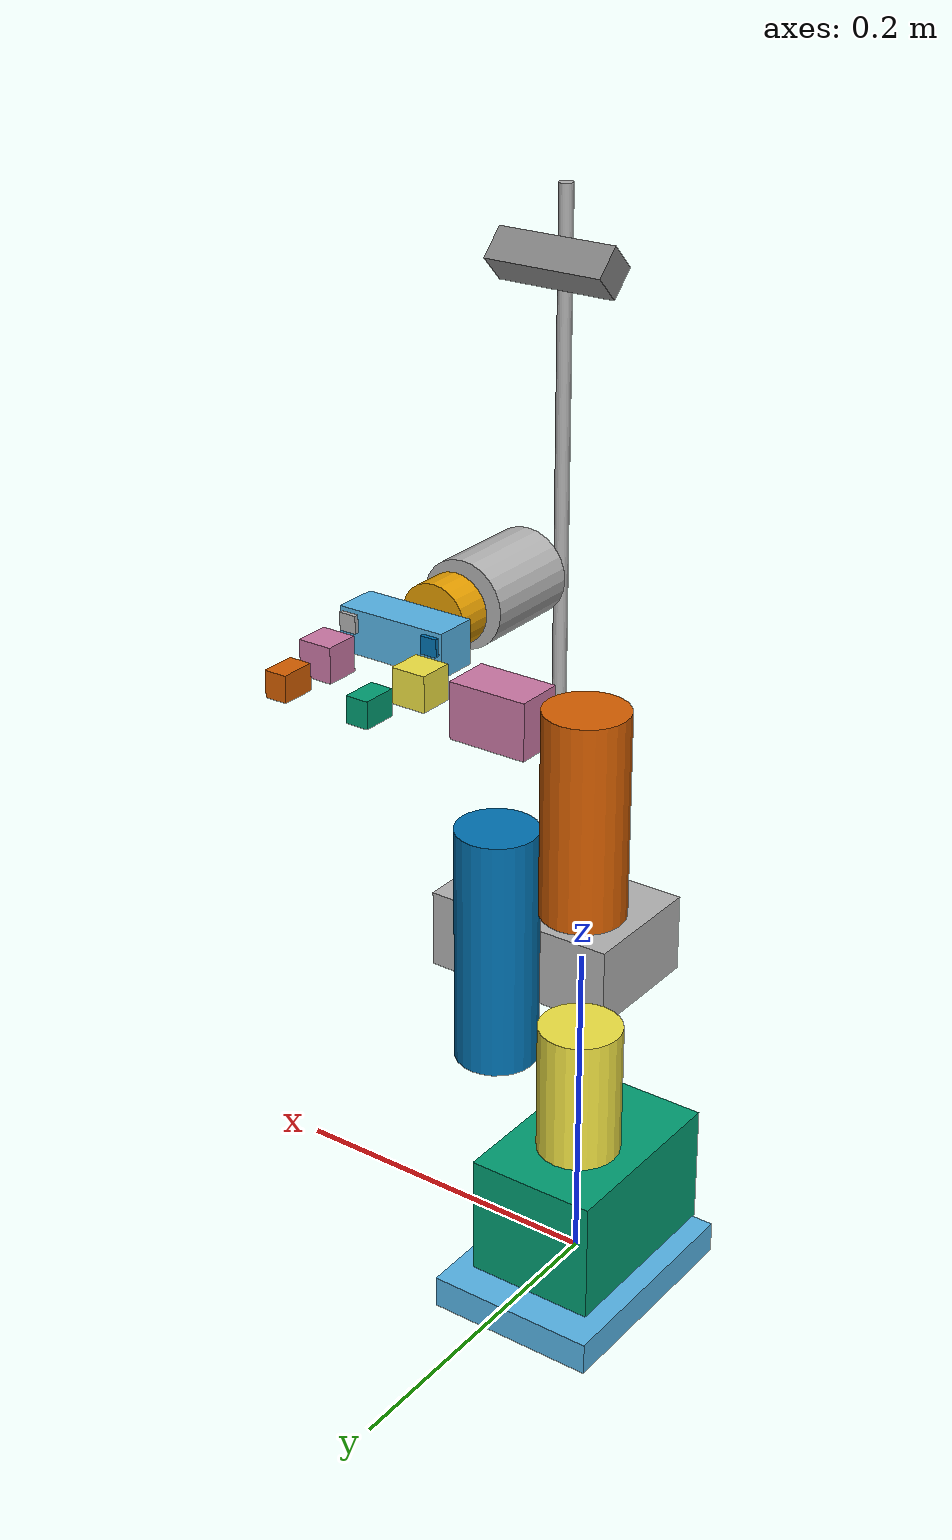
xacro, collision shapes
<?xml version="1.0"?>
<robot name="mycobot_280" xmlns:xacro="http://www.ros.org/wiki/xacro">
  <xacro:include filename="$(find mycobot_gazebo)/urdf/ros2_control/gazebo/mycobot_280.urdf.xacro"/>

  <xacro:property name="M_PI" value="3.1415926535897931" />

  <xacro:property name="d435_cam_width" value="0.090"/>
  <xacro:property name="d435_cam_height" value="0.025"/>
  <xacro:property name="d435_cam_depth" value="0.02505"/>

  <xacro:property name="d435_cam_depth_to_infra1_offset" value="0.0"/>
  <xacro:property name="d435_cam_depth_to_infra2_offset" value="-0.050"/>
  <xacro:property name="d435_cam_depth_to_color_offset" value="0.015"/>

  <xacro:property name="camera_tilt_angle_deg" value="45"/>

  <link name="torso_link">
    <inertial>
      <origin xyz="0 0 0.50" />
      <mass value="2.5" />
      <inertia ixx="0.8" ixy="0.0" ixz="0.0" iyy="0.8" iyz="0.0" izz="0.8" />
    </inertial>
    <visual name="holder">
      <origin xyz="0 0 0.25" rpy="0 0 0" />
      <material name="LightGrey">
        <color rgba="0.7 0.7 0.7 1.0"/>
      </material>
      <geometry>
        <cylinder radius="0.005" length="0.5"/>
      </geometry>
    </visual>
    <visual name="base">
      <origin xyz="0 0 0" rpy="0 0 0" />
      <material name="LightGrey">
        <color rgba="0.7 0.7 0.7 1.0"/>
      </material>
      <geometry>
        <box size="0.15 0.10 0.06" />
      </geometry>
    </visual>
    <collision name="holder">
      <origin xyz="0 0 0.25" rpy="0 0 0" />
      <geometry>
        <cylinder radius="0.005" length="0.6"/>
      </geometry>
    </collision>
    <collision name="base">
      <origin xyz="0 0 0.0" rpy="0 0 0" />
      <geometry>
        <box size="0.15 0.10 0.06" />
      </geometry>
    </collision>
  </link>

  <joint name="base_link_to_torso_link" type="fixed">
    <parent link="base_link"/>
    <child link="torso_link"/>
    <origin xyz="0.22 -0.30 0" rpy="0 0 0"/>
  </joint>

  <joint name="camera_head_joint" type="fixed">
    <parent link="torso_link"/>
    <child link="camera_head_link" />
    <origin xyz="0 0.01 0.50" rpy="0.0 ${camera_tilt_angle_deg * M_PI / 180} ${M_PI/2}"/>
  </joint>

  <link name="camera_head_link">
    <visual>
      <origin xyz="0 0 0" rpy="${M_PI/2} 0.0 ${M_PI/2}"/>
      <geometry>
        <mesh filename="file://$(find hello_mtc_with_perception)/urdf/meshes/d435.stl" />
      </geometry>
      <material name="aluminum">
        <color rgba="0.5 0.5 0.5 1"/>
      </material>
    </visual>
    <collision>
      <origin xyz="0 0 0" rpy="0 0 0"/>
      <geometry>
        <box size="${d435_cam_depth} ${d435_cam_width} ${d435_cam_height}"/>
      </geometry>
    </collision>
    <inertial>
      <mass value="0.072" />
      <origin xyz="0 0 0" />
      <inertia ixx="0.003881243" ixy="0.0" ixz="0.0" iyy="0.000498940" iyz="0.0" izz="0.003879257" />
    </inertial>
  </link>

  <joint name="camera_head_depth_joint" type="fixed">
    <origin xyz="0 0 0" rpy="0 0 0"/>
    <parent link="camera_head_link"/>
    <child link="camera_head_depth_frame" />
  </joint>
  <link name="camera_head_depth_frame"/>

  <joint name="camera_head_depth_optical_joint" type="fixed">
    <origin xyz="0 0 0" rpy="${-M_PI/2} 0 ${-M_PI/2}" />
    <parent link="camera_head_depth_frame" />
    <child link="camera_head_depth_optical_frame" />
  </joint>
  <link name="camera_head_depth_optical_frame"/>

  <joint name="camera_head_infra1_joint" type="fixed">
    <origin xyz="0 ${d435_cam_depth_to_infra1_offset} 0" rpy="0 0 0" />
    <parent link="camera_head_link" />
    <child link="camera_head_infra1_frame" />
  </joint>
  <link name="camera_head_infra1_frame"/>

  <joint name="camera_head_infra1_optical_joint" type="fixed">
    <origin xyz="0 0 0" rpy="${-M_PI/2} 0 ${-M_PI/2}" />
    <parent link="camera_head_infra1_frame" />
    <child link="camera_head_infra1_optical_frame" />
  </joint>
  <link name="camera_head_infra1_optical_frame"/>

  <joint name="camera_head_infra2_joint" type="fixed">
    <origin xyz="0 ${d435_cam_depth_to_infra2_offset} 0" rpy="0 0 0" />
    <parent link="camera_head_link" />
    <child link="camera_head_infra2_frame" />
  </joint>
  <link name="camera_head_infra2_frame"/>

  <joint name="camera_head_infra2_optical_joint" type="fixed">
    <origin xyz="0 0 0" rpy="${-M_PI/2} 0 ${-M_PI/2}" />
    <parent link="camera_head_infra2_frame" />
    <child link="camera_head_infra2_optical_frame" />
  </joint>
  <link name="camera_head_infra2_optical_frame"/>

  <joint name="camera_head_color_joint" type="fixed">
    <origin xyz="0 ${d435_cam_depth_to_color_offset} 0" rpy="0 0 0" />
    <parent link="camera_head_link" />
    <child link="camera_head_color_frame" />
  </joint>
  <link name="camera_head_color_frame"/>

  <joint name="camera_head_color_optical_joint" type="fixed">
    <origin xyz="0 0 0" rpy="${-M_PI/2} 0 ${-M_PI/2}" />
    <parent link="camera_head_color_frame" />
    <child link="camera_head_color_optical_frame" />
  </joint>
  <link name="camera_head_color_optical_frame"/>

  <gazebo reference="camera_head_link">
    <sensor name="camera_head" type="rgbd_camera">
      <camera>
        <horizontal_fov>1.5184</horizontal_fov>
        <image>
          <width>424</width>
          <height>240</height>
        </image>
        <clip>
          <near>0.05</near>
          <far>1.5</far>
        </clip>
        <optical_frame_id>camera_head_depth_optical_frame</optical_frame_id>
      </camera>
      <always_on>1</always_on>
      <gz_frame_id>camera_head_link</gz_frame_id>
      <topic>camera_head</topic>
      <update_rate>5</update_rate>
      <visualize>true</visualize>
    </sensor>
  </gazebo>
</robot>

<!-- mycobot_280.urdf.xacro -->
<robot xmlns:xacro="http://wiki.ros.org/xacro" name="mycobot_280">
    <xacro:include filename="$(find mycobot_gazebo)/urdf/ros2_control/gazebo/mycobot_280_gazebo.xacro"/>
    <xacro:include filename="$(find mycobot_gazebo)/urdf/ros2_control/gazebo/mycobot_280_ros2_control.xacro"/>

	<link name="world"/>

	<xacro:property name="effort" value="56.0"/>
	<xacro:property name="velocity" value="2.792527"/>

	<link name="base_link">
		<inertial>
			<origin xyz="0 0 0.0" rpy="0 0 0"/>
			<mass value="0.33"/>
			<inertia
				ixx="0.000784" ixy="0.0" ixz="0.0"
				iyy="0.000867" iyz="0.0"
				izz="0.001598"/>
		</inertial>
		<visual>
			<geometry>
				<mesh filename="file://$(find mycobot_description)/meshes/mycobot_280/base_link.dae"/>
			</geometry>
			<origin xyz = "0.0 0 -0.03" rpy = "0 0 ${pi/2}"/>
		</visual>
		<collision>
			<geometry>
				<box size="0.105 0.14 0.02"/>
			</geometry>
			<origin xyz = "0.0 0 -0.015" rpy = "0 0 0"/>
		</collision>
	</link>

	<link name="link1">
		<inertial>
			<origin xyz="0 0 0.0" rpy="0 0 0"/>
			<mass value="0.12"/>
			<inertia
				ixx="0.000148" ixy="0.0" ixz="0.0"
				iyy="0.000148" iyz="0.0"
				izz="0.000096"/>
		</inertial>
		<visual>
			<geometry>
				<mesh filename="file://$(find mycobot_description)/meshes/mycobot_280/link1.dae"/>
			</geometry>
			<origin xyz = "0.0 0 0 " rpy = " 0 0 ${-pi/2}"/>
		</visual>
		<collision>
			<geometry>
			     <box size="0.08 0.12 0.075"/>
			</geometry>
			<origin xyz = "0.0 -0.01 0.034" rpy = " 0 0 0"/>
		</collision>
	</link>

	<link name="link2">
		<inertial>
			<origin xyz="0 0 0.0" rpy="0 0 0"/>
			<mass value="0.19"/>
			<inertia
				ixx="0.000148" ixy="0.0" ixz="0.0"
				iyy="0.000148" iyz="0.0"
				izz="0.000096"/>
		</inertial>
		<visual>
			<geometry>
				<mesh filename="file://$(find mycobot_description)/meshes/mycobot_280/link2.dae"/>
			</geometry>
			<origin xyz = "0.0 0 -0.06096" rpy = " 0 0 ${-pi/2}"/>
		</visual>
		<collision>
			<geometry>
				<cylinder radius="0.025" length="0.085"/>
			</geometry>
			<origin xyz = "0.0 0 -0.02" rpy = " 0 0 ${-pi/2}"/>
		</collision>
	</link>

	<link name="link3">
		<inertial>
			<origin xyz="0 0 0.0" rpy="0 0 0"/>
		  	<mass value="0.16"/>
			<inertia
			  ixx="0.000148" ixy="0.0" ixz="0.0"
			  iyy="0.000148" iyz="0.0"
			  izz="0.000096"/>
		</inertial>
		<visual>
		  	<geometry>
		   		<mesh filename="file://$(find mycobot_description)/meshes/mycobot_280/link3.dae"/>
		  	</geometry>
			<origin xyz = "0.0 0 0.03256 " rpy = " 0 ${-pi/2} 0"/>
		</visual>
		<collision>
			<geometry>
				<cylinder radius="0.025" length="0.15"/>
			</geometry>
			<origin xyz = "-0.058 0 0.059" rpy = "0 ${-pi/2} 0"/>
		</collision>
	</link>

	<link name="link4">
		<inertial>
		  	<origin xyz="0 0 0.0" rpy="0 0 0"/>
			<mass value="0.124"/>
			<inertia
			  	ixx="0.000103" ixy="0.0" ixz="0.0"
			  	iyy="0.000103" iyz="0.0"
			  	izz="0.000096"/>
		</inertial>
		<visual>
			<geometry>
				<mesh filename="file://$(find mycobot_description)/meshes/mycobot_280/link4.dae"/>
			</geometry>
			<origin xyz = "0.0 0 0.03056 " rpy = " 0 ${-pi/2} 0"/>
		</visual>
		<collision>
			<geometry>
				<cylinder radius="0.025" length="0.125"/>
			</geometry>
			<origin xyz = "-0.05 0 0.0" rpy = "0 ${-pi/2} 0"/>
		</collision>
	</link>

	<link name="link5">
		<inertial>
			<origin xyz="0 0 0.0" rpy="0 0 0"/>
		  	<mass value="0.11"/>
			<inertia
			  ixx="0.000103" ixy="0.0" ixz="0.0"
			  iyy="0.000103" iyz="0.0"
			  izz="0.000096"/>
		</inertial>
		<visual>
		  	<geometry>
				<mesh filename="file://$(find mycobot_description)/meshes/mycobot_280/link5.dae"/>
		  	</geometry>
		  	<origin xyz = "0.0 0 -0.03356 " rpy = "${-pi/2} 0 0"/>
		</visual>
		<collision>
			<geometry>
				<box size="0.03 0.035 0.05"/>
			</geometry>
			<origin xyz = "0.0 0 -0.005" rpy = "0 0.0 0"/>
		</collision>
	</link>

	<link name="link6">
		<inertial>
			<origin xyz="0 0 0.0" rpy="0 0 0"/>
		  	<mass value="0.0739"/>
			<inertia
			  ixx="0.00006649" ixy="0.0" ixz="0.0"
			  iyy="0.00006649" iyz="0.0"
			  izz="0.000096"/>
		</inertial>
		<visual>
		  	<geometry>
				<mesh filename="file://$(find mycobot_description)/meshes/mycobot_280/link6.dae"/>
		  	</geometry>
		  	<origin xyz = "0 0.00 -0.038" rpy = "0 0 0"/>
		</visual>
		<collision>
		   	<geometry>
		   		<cylinder radius="0.025" length="0.06"/>
		  	</geometry>
		  	<origin xyz = "0 0.00 0.0" rpy = "${-pi/2} 0 0"/>
		</collision>
	</link>

	<link name="link6_flange">
		<inertial>
			<origin xyz="0 0 0.0" rpy="0 0 0"/>
		  	<mass value="0.035"/>
		  	<inertia
				ixx="0.0000149" ixy="0.0" ixz="0.0"
				iyy="0.0000149" iyz="0.0"
				izz="0.0000196"/>
		</inertial>
		<visual>
		  	<geometry>
				<mesh filename="file://$(find mycobot_description)/meshes/mycobot_280/link7.dae"/>
		  	</geometry>
		  	<origin xyz = "0.0 0 -0.012 " rpy = "0 0 0"/>
		</visual>
		<collision>
		   	<geometry>
		   		<cylinder radius="0.02" length="0.02"/>
		  	</geometry>
		  	<origin xyz = "0 0.00 0.0" rpy = "0 0 0"/>
		</collision>
	</link>

	<link name="gripper_base">
		<inertial>
			<origin xyz="0 0 0.0" rpy="0 0 0"/>
		  	<mass value="0.07"/>
		  	<inertia
				ixx="0.000010725" ixy="0.0" ixz="0.0"
				iyy="0.000014392" iyz="0.0"
				izz="0.000018517"/>
		</inertial>
		<visual>
		  	<geometry>
				<mesh filename="file://$(find mycobot_description)/meshes/mycobot_280/gripper_base.dae"/>
		  	</geometry>
		  	<origin xyz = "0.0 0.0 -0.012" rpy = "0 0 0"/>
		</visual>
		<collision>
		   	<geometry>
		   		<box size="0.065 0.025 0.025"/>
		  	</geometry>
		  	<origin xyz = "0.0 0.0 0.0" rpy = "0 0 0"/>
		</collision>
	</link>

	<link name="gripper_left1">
		<inertial>
			<origin xyz="0 0 0.0" rpy="0 0 0"/>
		  	<mass value="0.007"/>
		  	<inertia
				ixx="1e-6" ixy="0.0" ixz="0.0"
				iyy="1e-6" iyz="0.0"
				izz="1e-6"/>
		</inertial>
		<visual>
		  	<geometry>
		  		<mesh filename="file://$(find mycobot_description)/meshes/mycobot_280/gripper_left1.dae"/>
		  	</geometry>
			<origin xyz = "0.039 -0.0133 -0.012 " rpy = " 0 0 0"/>
		</visual>
		<collision>
		  	<geometry>
		   		<box size="0.013 0.02 0.015"/>
		  	</geometry>
			<origin xyz = "0.013 0.042 -0.010 " rpy = " 0 0 0"/>
		</collision>
	</link>

	<link name="gripper_left2">
		<inertial>
			<origin xyz="0 0 0.0" rpy="0 0 0"/>
		  	<mass value="0.007"/>
		  	<inertia
				ixx="1e-6" ixy="0.0" ixz="0.0"
				iyy="1e-6" iyz="0.0"
				izz="1e-6"/>
		</inertial>
		<visual>
		  	<geometry>
		   		<mesh filename="file://$(find mycobot_description)/meshes/mycobot_280/gripper_left2.dae"/>
		  	</geometry>
			<origin xyz = "0.005 -0.0195 -0.012 " rpy = " 0 0 0"/>
		</visual>
		<collision>
		  	<geometry>
		   		<box size="0.02 0.02 0.02"/>
		  	</geometry>
			<origin xyz = "-0.025 0.0 -0.010 " rpy = " 0 0 0"/>
		</collision>
	</link>

	<link name="gripper_left3">
		<inertial>
			<origin xyz="0 0 0.0" rpy="0 0 0"/>
		  	<mass value="0.007"/>
		  	<inertia
				ixx="1e-6" ixy="0.0" ixz="0.0"
				iyy="1e-6" iyz="0.0"
				izz="1e-6"/>
		</inertial>
		<visual>
		  	<geometry>
		   		<mesh filename="file://$(find mycobot_description)/meshes/mycobot_280/gripper_left3.dae"/>
		  	</geometry>
		<origin xyz = "0.012 0.0025 -0.012 " rpy = " 0 0 0"/>
		</visual>
		<collision>
		  	<geometry>
		   		<box size="0.01 0.01 0.01"/>
		  	</geometry>
			<origin xyz = "-0.014 0.005 0.005 " rpy = " 0 0 0"/>
		</collision>
	</link>

	<link name="gripper_right1">
		<inertial>
			<origin xyz="0 0 0.0" rpy="0 0 0"/>
		  	<mass value="0.007"/>
		  	<inertia
				ixx="1e-6" ixy="0.0" ixz="0.0"
				iyy="1e-6" iyz="0.0"
				izz="1e-6"/>
		</inertial>
		<visual>
			<geometry>
		   		<mesh filename="file://$(find mycobot_description)/meshes/mycobot_280/gripper_right1.dae"/>
		  	</geometry>
			<origin xyz = "-0.039 -0.0133 -0.012 " rpy = " 0 0 0"/>
		</visual>
		<collision>
		  	<geometry>
		   		<box size="0.013 0.02 0.015"/>
		  	</geometry>
			<origin xyz = "-0.013 0.042 -0.010 " rpy = " 0 0 0"/>
		</collision>
	</link>

	<link name="gripper_right2">
		<inertial>
			<origin xyz="0 0 0.0" rpy="0 0 0"/>
		  	<mass value="0.007"/>
		  	<inertia
				ixx="1e-6" ixy="0.0" ixz="0.0"
				iyy="1e-6" iyz="0.0"
				izz="1e-6"/>
		</inertial>
		<visual>
			<geometry>
		   		<mesh filename="file://$(find mycobot_description)/meshes/mycobot_280/gripper_right2.dae"/>
		 	</geometry>
			<origin xyz = "-0.005 -0.0195 -0.012 " rpy = " 0 0 0"/>
		</visual>
		<collision>
		  	<geometry>
		   		<box size="0.02 0.02 0.02"/>
		  	</geometry>
			<origin xyz = "0.025 0.0 -0.010 " rpy = " 0 0 0"/>
		</collision>
	</link>

	<link name="gripper_right3">
		<inertial>
			<origin xyz="0 0 0.0" rpy="0 0 0"/>
		  	<mass value="0.007"/>
		  	<inertia
				ixx="1e-6" ixy="0.0" ixz="0.0"
				iyy="1e-6" iyz="0.0"
				izz="1e-6"/>
		</inertial>
		<visual>
			<geometry>
		   		<mesh filename="file://$(find mycobot_description)/meshes/mycobot_280/gripper_right3.dae"/>
			</geometry>
			<origin xyz = "-0.012 0.0025 -0.012 " rpy = " 0 0 0"/>
		</visual>
		<collision>
		  	<geometry>
		   		<box size="0.01 0.01 0.01"/>
		  	</geometry>
			<origin xyz = "0.014 0.005 0.005 " rpy = " 0 0 0"/>
		</collision>
	</link>

    <gazebo reference="base_link">
        <visual>
            <material>
                <ambient>0.5 0.5 0.5 1</ambient>
                <diffuse>0.5 0.5 0.5 1</diffuse>
                <specular>0.5 0.5 0.5 1</specular>
            </material>
        </visual>
    </gazebo>

    <gazebo reference="link1">
        <visual>
            <material>
                <ambient>0.5 0.5 0.5 1</ambient>
                <diffuse>0.5 0.5 0.5 1</diffuse>
                <specular>0.5 0.5 0.5 1</specular>
            </material>
        </visual>
    </gazebo>

    <gazebo reference="link2">
        <visual>
            <material>
                <ambient>1 1 1 1</ambient>
                <diffuse>1 1 1 1</diffuse>
                <specular>1 1 1 1</specular>
            </material>
        </visual>
    </gazebo>

    <gazebo reference="link3">
        <visual>
            <material>
                <ambient>1 1 1 1</ambient>
                <diffuse>1 1 1 1</diffuse>
                <specular>1 1 1 1</specular>
            </material>
        </visual>
    </gazebo>

    <gazebo reference="link4">
        <visual>
            <material>
                <ambient>1 1 1 1</ambient>
                <diffuse>1 1 1 1</diffuse>
                <specular>1 1 1 1</specular>
            </material>
        </visual>
    </gazebo>

    <gazebo reference="link5">
        <visual>
            <material>
                <ambient>1 1 1 1</ambient>
                <diffuse>1 1 1 1</diffuse>
                <specular>1 1 1 1</specular>
            </material>
        </visual>
    </gazebo>

    <gazebo reference="link6">
        <visual>
            <material>
                <ambient>1 1 1 1</ambient>
                <diffuse>1 1 1 1</diffuse>
                <specular>1 1 1 1</specular>
            </material>
        </visual>
    </gazebo>

    <gazebo reference="link6_flange">
        <visual>
            <material>
                <ambient>0.5 0.5 0.5 1</ambient>
                <diffuse>0.5 0.5 0.5 1</diffuse>
                <specular>0.5 0.5 0.5 1</specular>
            </material>
        </visual>
    </gazebo>

    <gazebo reference="gripper_base">
        <visual>
            <material>
                <ambient>1 1 1 1</ambient>
                <diffuse>1 1 1 1</diffuse>
                <specular>1 1 1 1</specular>
            </material>
        </visual>
    </gazebo>

	<joint name="virtual_joint" type="fixed">
		<parent link="world"/>
		<child link="base_link"/>
		<origin xyz= "0 0 0" rpy = "0 0 0"/>
	</joint>

    <joint name="base_link_to_link1" type="fixed">
        <parent link="base_link"/>
            <child link="link1"/>
            <origin xyz="0 0 0" rpy="0 0 0"/>
    </joint>

	<joint name="link1_to_link2" type="revolute">
		<axis xyz="0 0 1"/>
		<limit effort = "${effort}" lower = "-2.879793" upper = "2.879793" velocity = "${velocity}" />
		<parent link="link1"/>
		<child link="link2"/>
		<origin xyz= "0 0 0.13156" rpy = "0 0 ${pi/2}"/>
        <dynamics damping="0.0" friction="0.0"/>
	</joint>

	<joint name="link2_to_link3" type="revolute">
		<axis xyz="0 0 1"/>
		<limit effort = "${effort}" lower = "-2.879793" upper = "2.879793" velocity = "${velocity}" />
		<parent link="link2"/>
		<child link="link3"/>
		<origin xyz= "0 0 -0.001" rpy = "0 ${pi/2} ${-pi/2}"/>
        <dynamics damping="0.0" friction="0.0"/>
	</joint>

	<joint name="link3_to_link4" type="revolute">
		<axis xyz=" 0 0 1"/>
		<limit effort = "${effort}" lower = "-2.879793" upper = "2.879793" velocity = "${velocity}" />
		<parent link="link3"/>
		<child link="link4"/>
		<origin xyz= "-0.1104 0 0   " rpy = "0 0 0"/>
        <dynamics damping="0.0" friction="0.0"/>
	</joint>

	<joint name="link4_to_link5" type="revolute">
		<axis xyz=" 0 0 1"/>
		<limit effort = "${effort}" lower = "-2.879793" upper = "2.879793" velocity = "${velocity}" />
		<parent link="link4"/>
		<child link="link5"/>
		<origin xyz= "-0.096 0 0.06062" rpy = "0 0 ${-pi/2}"/>
        <dynamics damping="0.0" friction="0.0"/>
	</joint>

	<joint name="link5_to_link6" type="revolute">
		<axis xyz=" 0 0 1"/>
		<limit effort = "${effort}" lower = "-2.879793" upper = "2.879793" velocity = "${velocity}" />
		<parent link="link5"/>
		<child link="link6"/>
		<origin xyz= "0 -0.07318 0" rpy = "${pi/2} ${-pi/2} 0"/>
        <dynamics damping="0.0" friction="0.0"/>
	</joint>

	<joint name="link6_to_link6flange" type="revolute">
		<axis xyz=" 0 0 1"/>
		<limit effort = "${effort}" lower = "-3.05" upper = "3.05" velocity = "${velocity}" />
		<parent link="link6"/>
		<child link="link6_flange"/>
		<origin xyz= "0 0.0456 0" rpy = "${-pi/2} 0 0"/>
        <dynamics damping="0.0" friction="0.0"/>
	</joint>

	<joint name="link6flange_to_gripper_base" type="fixed">
		<parent link="link6_flange"/>
		<child link="gripper_base"/>
		<origin xyz= "0 0 0.034" rpy = "1.579 0 0"/>
	</joint>

	<joint name="gripper_controller" type="revolute">
		<axis xyz="0 0 1"/>
		<limit effort = "${effort}" lower = "-0.7" upper = "0.15" velocity = "${velocity}" />
		<parent link="gripper_base"/>
		<child link="gripper_left3"/>
		<origin xyz= "-0.012 0.005 0" rpy = "0 0 0"/>
        <dynamics damping="0.0" friction="0.0"/>
	</joint>

	<joint name="gripper_base_to_gripper_left2" type="revolute">
		<axis xyz="0 0 1"/>
		<limit effort = "${effort}" lower = "-0.8" upper = "0.5" velocity = "${velocity}" />
		<parent link="gripper_base"/>
		<child link="gripper_left2"/>
		<origin xyz= "-0.005 0.027 0" rpy = "0 0 0"/>
		<mimic joint="gripper_controller" multiplier="1.0" offset="0" />
        <dynamics damping="0.0" friction="0.0"/>
	</joint>

	<joint name="gripper_left3_to_gripper_left1" type="revolute">
		<axis xyz="0 0 1"/>
		<limit effort = "${effort}" lower = "-0.5" upper = "0.5" velocity = "${velocity}" />
		<parent link="gripper_left3"/>
		<child link="gripper_left1"/>
		<origin xyz= "-0.027 0.016 0" rpy = "0 0 0"/>
		<mimic joint="gripper_controller" multiplier="-1.0" offset="0" />
        <dynamics damping="0.0" friction="0.0"/>
	</joint>

	<joint name="gripper_base_to_gripper_right3" type="revolute">
		<axis xyz="0 0 1"/>
		<limit effort = "${effort}" lower = "-0.15" upper = "0.7" velocity = "${velocity}" />
		<parent link="gripper_base"/>
		<child link="gripper_right3"/>
		<origin xyz= "0.012 0.005 0" rpy = "0 0 0"/>
		<mimic joint="gripper_controller" multiplier="-1.0" offset="0" />
        <dynamics damping="0.0" friction="0.0"/>
	</joint>

	<joint name="gripper_base_to_gripper_right2" type="revolute">
		<axis xyz="0 0 1"/>
		<limit effort = "${effort}" lower = "-0.5" upper = "0.8" velocity = "${velocity}" />
		<parent link="gripper_base"/>
		<child link="gripper_right2"/>
		<origin xyz= "0.005 0.027 0" rpy = "0 0 0"/>
		<mimic joint="gripper_controller" multiplier="-1.0" offset="0" />
        <dynamics damping="0.0" friction="0.0"/>
	</joint>

	<joint name="gripper_right3_to_gripper_right1" type="revolute">
		<axis xyz="0 0 1"/>
		<limit effort = "${effort}" lower = "-0.5" upper = "0.5" velocity = "${velocity}" />
		<parent link="gripper_right3"/>
		<child link="gripper_right1"/>
		<origin xyz= "0.027 0.016 0" rpy = "0 0 0"/>
		<mimic joint="gripper_controller" multiplier="1.0" offset="0" />
        <dynamics damping="0.0" friction="0.0"/>
	</joint>

</robot>
